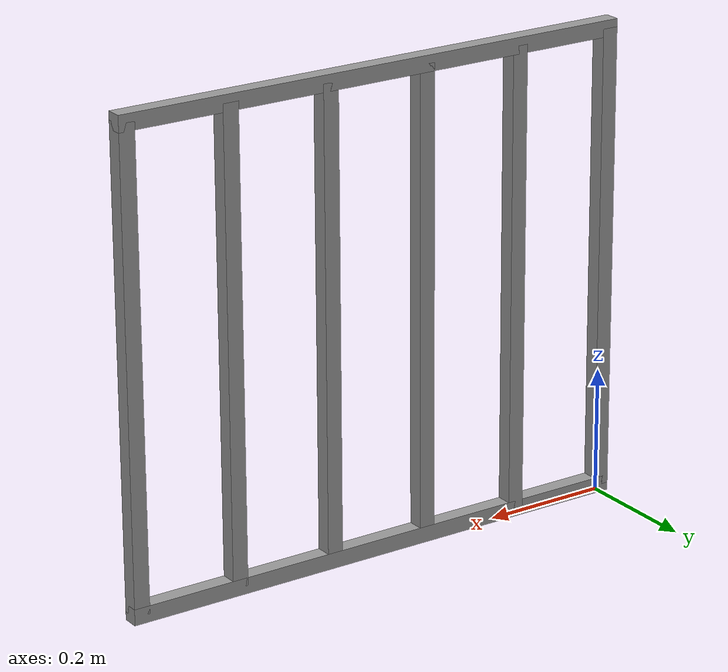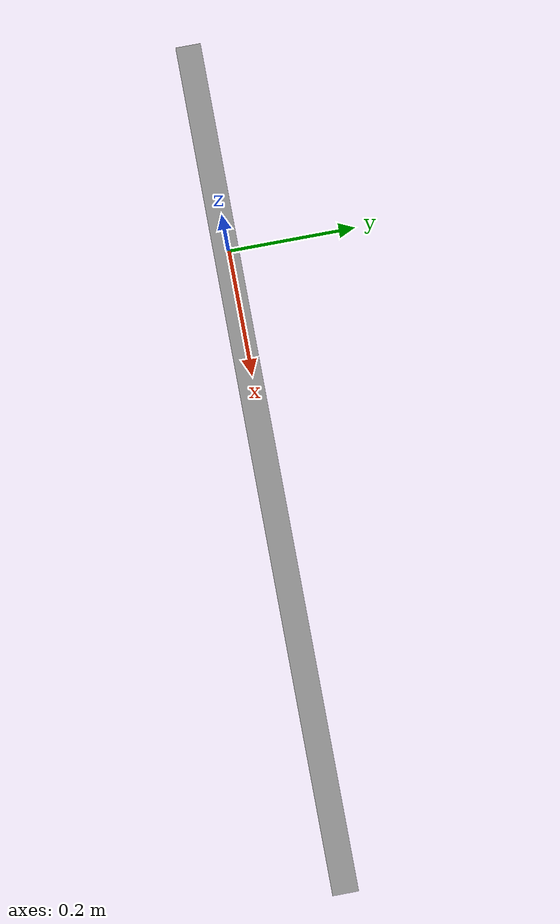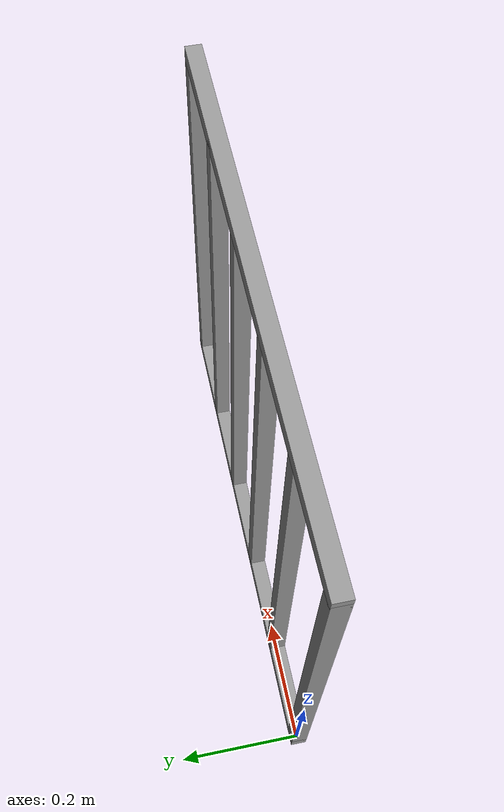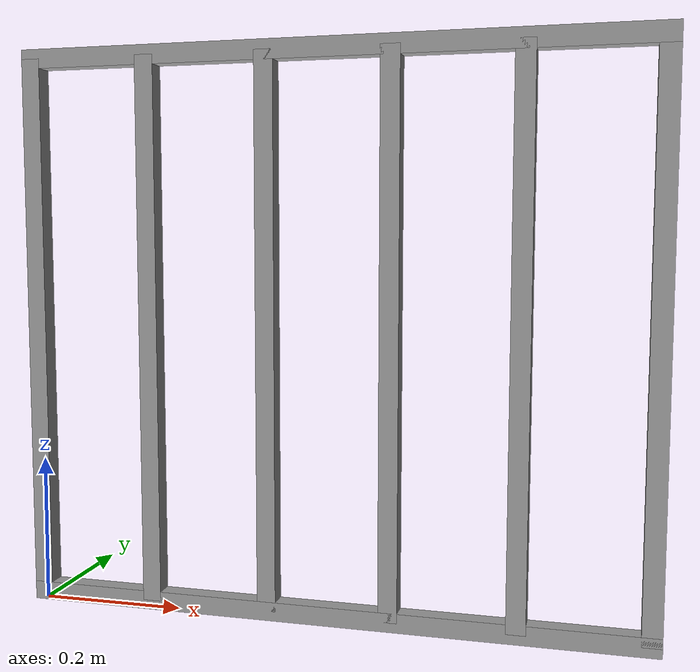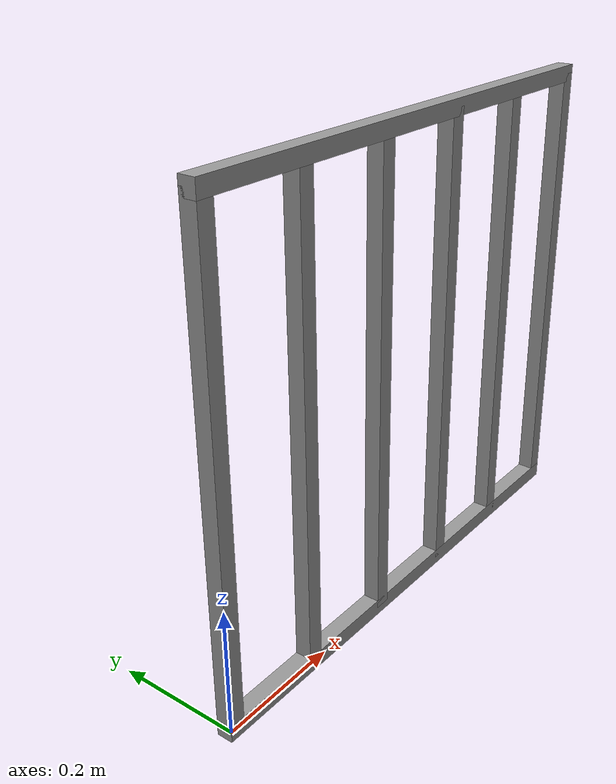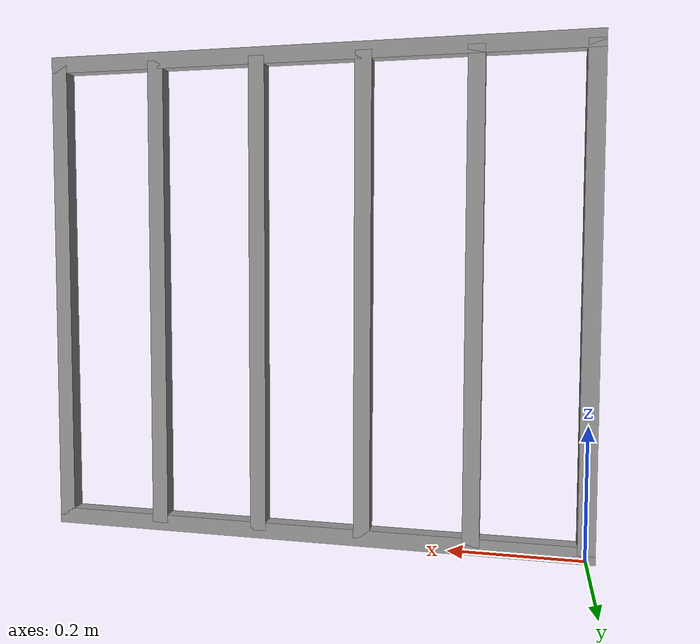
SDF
<?xml version="1.0" ?>
<sdf version="1.5">
  <model name="pet_gate">
    <static>true</static>
    <link name="link">

      <collision name="bar1_collision">
        <pose>0 0 0.381 0 0 0</pose>
        <geometry>
          <box>
            <size>0.0254 0.0254 0.7366</size>
          </box>
        </geometry>
      </collision>
      <visual name="bar1_visual">
        <pose>0 0 0.381 0 0 0</pose>
        <geometry>
          <box>
            <size>0.0254 0.0254 0.7366</size>
          </box>
        </geometry>
        <material>
          <script>
            <uri>file://media/materials/scripts/gazebo.material</uri>
            <name>Gazebo/Grey</name>
          </script>
        </material>
      </visual>

      <collision name="bar2_collision">
        <pose>0.1651 0 0.381 0 0 0</pose>
        <geometry>
          <box>
            <size>0.0254 0.0254 0.7366</size>
          </box>
        </geometry>
      </collision>
      <visual name="bar2_visual">
        <pose>0.1651 0 0.381 0 0 0</pose>
        <geometry>
          <box>
            <size>0.0254 0.0254 0.7366</size>
          </box>
        </geometry>
        <material>
          <script>
            <uri>file://media/materials/scripts/gazebo.material</uri>
            <name>Gazebo/Grey</name>
          </script>
        </material>
      </visual>

      <collision name="bar3_collision">
        <pose>0.3302 0 0.381 0 0 0</pose>
        <geometry>
          <box>
            <size>0.0254 0.0254 0.7366</size>
          </box>
        </geometry>
      </collision>
      <visual name="bar3_visual">
        <pose>0.3302 0 0.381 0 0 0</pose>
        <geometry>
          <box>
            <size>0.0254 0.0254 0.7366</size>
          </box>
        </geometry>
        <material>
          <script>
            <uri>file://media/materials/scripts/gazebo.material</uri>
            <name>Gazebo/Grey</name>
          </script>
        </material>
      </visual>

      <collision name="bar4_collision">
        <pose>0.4953 0 0.381 0 0 0</pose>
        <geometry>
          <box>
            <size>0.0254 0.0254 0.7366</size>
          </box>
        </geometry>
      </collision>
      <visual name="bar4_visual">
        <pose>0.4953 0 0.381 0 0 0</pose>
        <geometry>
          <box>
            <size>0.0254 0.0254 0.7366</size>
          </box>
        </geometry>
        <material>
          <script>
            <uri>file://media/materials/scripts/gazebo.material</uri>
            <name>Gazebo/Grey</name>
          </script>
        </material>
      </visual>

      <collision name="bar5_collision">
        <pose>0.6604 0 0.381 0 0 0</pose>
        <geometry>
          <box>
            <size>0.0254 0.0254 0.7366</size>
          </box>
        </geometry>
      </collision>
      <visual name="bar5_visual">
        <pose>0.6604 0 0.381 0 0 0</pose>
        <geometry>
          <box>
            <size>0.0254 0.0254 0.7366</size>
          </box>
        </geometry>
        <material>
          <script>
            <uri>file://media/materials/scripts/gazebo.material</uri>
            <name>Gazebo/Grey</name>
          </script>
        </material>
      </visual>

      <collision name="bar6_collision">
        <pose>0.8255 0 0.381 0 0 0</pose>
        <geometry>
          <box>
            <size>0.0254 0.0254 0.7366</size>
          </box>
        </geometry>
      </collision>
      <visual name="bar6_visual">
        <pose>0.8255 0 0.381 0 0 0</pose>
        <geometry>
          <box>
            <size>0.0254 0.0254 0.7366</size>
          </box>
        </geometry>
        <material>
          <script>
            <uri>file://media/materials/scripts/gazebo.material</uri>
            <name>Gazebo/Grey</name>
          </script>
        </material>
      </visual>

      <collision name="top_rail_collision">
        <pose>0.41275 0 0.7493 0 0 0</pose>
        <geometry>
          <box>
            <size>0.8509 0.0254 0.0254</size>
          </box>
        </geometry>
      </collision>
      <visual name="top_rail_visual">
        <pose>0.41275 0 0.7493 0 0 0</pose>
        <geometry>
          <box>
            <size>0.8509 0.0254 0.0254</size>
          </box>
        </geometry>
        <material>
          <script>
            <uri>file://media/materials/scripts/gazebo.material</uri>
            <name>Gazebo/Grey</name>
          </script>
        </material>
      </visual>

      <collision name="bottom_rail_collision">
        <pose>0.41275 0 0.0127 0 0 0</pose>
        <geometry>
          <box>
            <size>0.8509 0.0254 0.0254</size>
          </box>
        </geometry>
      </collision>
      <visual name="bottom_rail_visual">
        <pose>0.41275 0 0.0127 0 0 0</pose>
        <geometry>
          <box>
            <size>0.8509 0.0254 0.0254</size>
          </box>
        </geometry>
        <material>
          <script>
            <uri>file://media/materials/scripts/gazebo.material</uri>
            <name>Gazebo/Grey</name>
          </script>
        </material>
      </visual>

    </link>
  </model>
</sdf>
